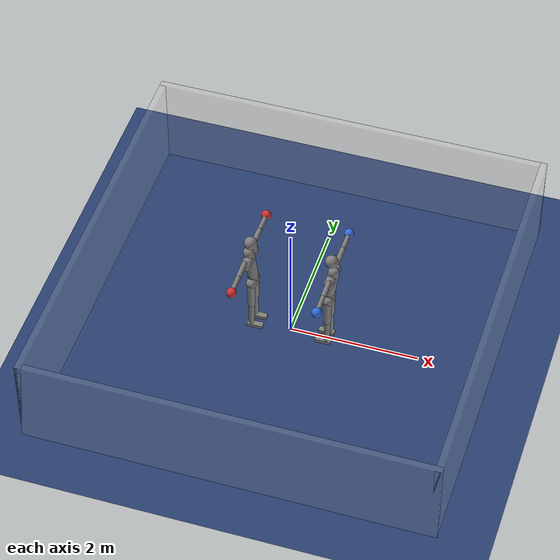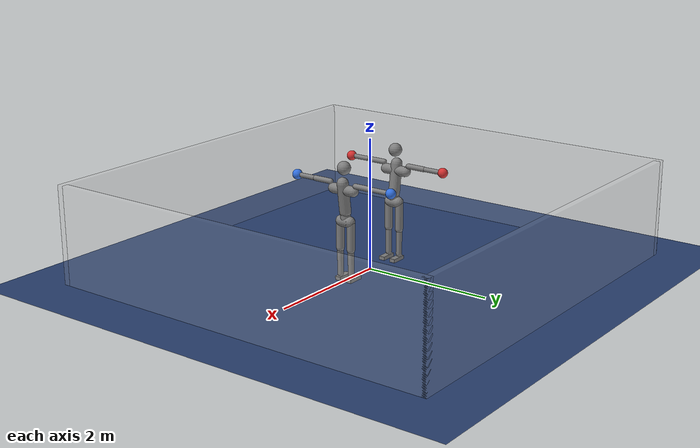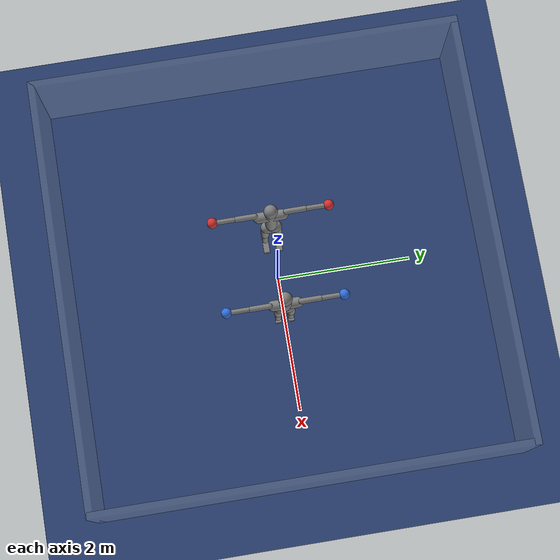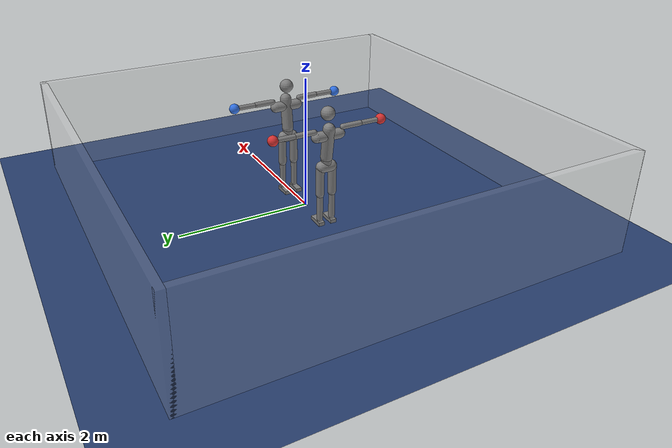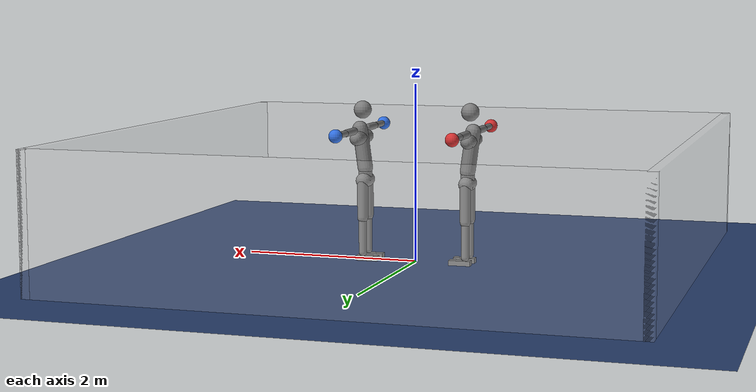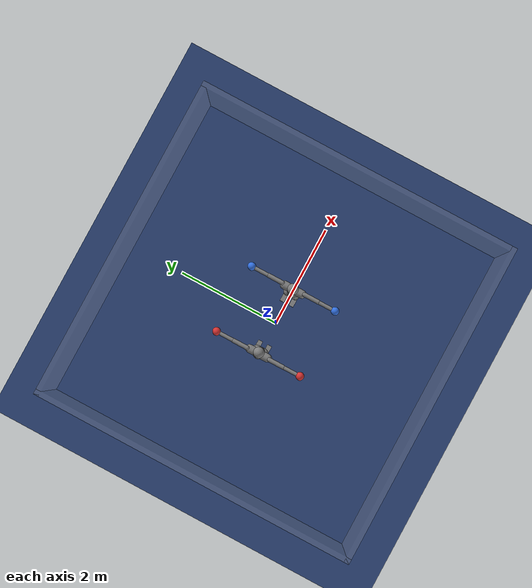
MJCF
<mujoco model="dev_spar">
  <compiler angle="degree" inertiafromgeom="true" autolimits="true"/>
  <option timestep="0.005" iterations="10" ls_iterations="10" integrator="implicitfast">
    <flag eulerdamp="disable"/>
  </option>
  <default>
    <geom contype="1" conaffinity="1" condim="3" friction="1.0 0.005 0.0001" density="1000" margin="0"/>
    <joint limited="true"/>
    <position ctrllimited="true"/>
  </default>
  <asset>
    <texture name="grid" type="2d" builtin="checker" rgb1=".18 .28 .48" rgb2=".14 .22 .40" width="300" height="300"/>
    <material name="grid" texture="grid" texrepeat="6 6" reflectance="0"/>
  </asset>
  <worldbody>
    <light pos="0 0 5" dir="0 0 -1" directional="true"/>
    <geom name="floor" type="plane" size="0 0 0.05" material="grid" friction="1.0 0.005 0.0001"/>
    <geom name="rope_n" type="box" pos="0.0000 3.1000 0.7500" size="3.1500 0.0500 0.7500" rgba="0.8 0.8 0.8 0.15"/>
    <geom name="rope_s" type="box" pos="0.0000 -3.1000 0.7500" size="3.1500 0.0500 0.7500" rgba="0.8 0.8 0.8 0.15"/>
    <geom name="rope_e" type="box" pos="3.1000 0.0000 0.7500" size="0.0500 3.1500 0.7500" rgba="0.8 0.8 0.8 0.15"/>
    <geom name="rope_w" type="box" pos="-3.1000 0.0000 0.7500" size="0.0500 3.1500 0.7500" rgba="0.8 0.8 0.8 0.15"/>
    <body name="a_pelvis" pos="-0.6000 0.0000 0.9049" quat="1.00000 0 0 0.00000">
      <freejoint name="a_root"/>
      <geom name="a_pelvis_geom" type="capsule" fromto="0.0000 -0.0700 0.0000 0.0000 0.0700 0.0000" size="0.0850" mass="6.4846" />
      <geom name="a_pelvis_up" type="capsule" fromto="0.0000 0.0000 0.0000 -0.0002 -0.0000 0.0989" size="0.0765" mass="4.1654" />
      <body name="a_torso" pos="-0.0002 -0.0000 0.1189">
        <joint name="a_abdomen_z" type="hinge" axis="0 0 1" range="-45 45" damping="0.5" armature="0.08" stiffness="0"/>
        <joint name="a_abdomen_y" type="hinge" axis="0 1 0" range="-60 30" damping="0.5" armature="0.08" stiffness="0"/>
        <joint name="a_abdomen_x" type="hinge" axis="1 0 0" range="-35 35" damping="0.5" armature="0.08" stiffness="0"/>
        <geom name="a_torso_geom" type="capsule" fromto="0.0000 0.0000 0.0200 -0.0604 0.0000 0.4641" size="0.0850" mass="26.6250" />
        <geom name="a_chest_geom" type="capsule" fromto="-0.0418 -0.1777 0.3632 -0.0418 0.1777 0.3632" size="0.0765" mass="0.5"/>
        <geom name="a_head_geom" type="sphere" pos="-0.0270 0.0000 0.6791" size="0.1000" mass="6.0750" />
        <body name="a_upper_arm_l" pos="-0.0522 0.2221 0.4540">
          <joint name="a_shoulder_x_l" type="hinge" axis="1 0 0" range="-170 30" damping="0.5" armature="0.03" stiffness="0"/>
          <joint name="a_shoulder_z_l" type="hinge" axis="0 0 1" range="-110 110" damping="0.5" armature="0.03" stiffness="0"/>
          <geom name="a_upper_arm_l_geom" type="capsule" fromto="0.0000 0.0000 0.0000 0.0000 0.2724 0.0000" size="0.0400" mass="2.1000" />
          <body name="a_forearm_l" pos="0.0000 0.2724 0.0000">
            <joint name="a_elbow_l" type="hinge" axis="0 0 1" range="-150 0" damping="0.5" armature="0.02" stiffness="0"/>
            <geom name="a_forearm_l_geom" type="capsule" fromto="0.0000 0.0000 0.0000 0.0000 0.2718 0.0000" size="0.0350" mass="1.2000" />
            <geom name="a_glove_l" type="sphere" pos="0.0000 0.3393 0.0000" size="0.0750" mass="0.7330" rgba="0.85 0.2 0.2 1"/>
          </body>
        </body>
        <body name="a_upper_arm_r" pos="-0.0522 -0.2221 0.4540">
          <joint name="a_shoulder_x_r" type="hinge" axis="1 0 0" range="-30 170" damping="0.5" armature="0.03" stiffness="0"/>
          <joint name="a_shoulder_z_r" type="hinge" axis="0 0 1" range="-110 110" damping="0.5" armature="0.03" stiffness="0"/>
          <geom name="a_upper_arm_r_geom" type="capsule" fromto="0.0000 0.0000 0.0000 0.0000 -0.2724 0.0000" size="0.0400" mass="2.1000" />
          <body name="a_forearm_r" pos="0.0000 -0.2724 0.0000">
            <joint name="a_elbow_r" type="hinge" axis="0 0 1" range="0 150" damping="0.5" armature="0.02" stiffness="0"/>
            <geom name="a_forearm_r_geom" type="capsule" fromto="0.0000 0.0000 0.0000 0.0000 -0.2718 0.0000" size="0.0350" mass="1.2000" />
            <geom name="a_glove_r" type="sphere" pos="0.0000 -0.3393 0.0000" size="0.0750" mass="0.7330" rgba="0.85 0.2 0.2 1"/>
          </body>
        </body>
      </body>
      <body name="a_thigh_l" pos="0.0002 0.0960 -0.0100">
        <joint name="a_hip_x_l" type="hinge" axis="1 0 0" range="-40 40" damping="0.5" armature="0.1" stiffness="0"/>
        <joint name="a_hip_z_l" type="hinge" axis="0 0 1" range="-35 35" damping="0.5" armature="0.1" stiffness="0"/>
        <joint name="a_hip_y_l" type="hinge" axis="0 1 0" range="-120 30" damping="0.5" armature="0.1" stiffness="0"/>
        <geom name="a_thigh_l_geom" type="capsule" fromto="0.0000 0.0000 0.0000 0.0000 0.0000 -0.4084" size="0.0600" mass="7.5000" />
        <body name="a_shin_l" pos="0.0000 0.0000 -0.4084">
          <joint name="a_knee_l" type="hinge" axis="0 1 0" range="0 150" damping="0.5" armature="0.1" stiffness="0"/>
          <geom name="a_shin_l_geom" type="capsule" fromto="0.0000 0.0000 0.0000 0.0000 0.0000 -0.3972" size="0.0450" mass="3.4875" />
          <body name="a_foot_l" pos="0.0000 0.0000 -0.3972">
            <joint name="a_ankle_y_l" type="hinge" axis="0 1 0" range="-20 50" damping="0.5" armature="0.03" stiffness="0"/>
            <joint name="a_ankle_x_l" type="hinge" axis="1 0 0" range="-25 25" damping="0.5" armature="0.03" stiffness="0"/>
            <geom name="a_foot_l_geom" type="box" pos="0.0565 0.0000 -0.0623" size="0.1228 0.0450 0.0280" mass="1.0875" friction="1.0 0.005 0.0001"/>
            <site name="a_foot_l_site" pos="0.0565 0.0000 -0.0623" size="0.01"/>
          </body>
        </body>
      </body>
      <body name="a_thigh_r" pos="0.0002 -0.0961 -0.0100">
        <joint name="a_hip_x_r" type="hinge" axis="1 0 0" range="-40 40" damping="0.5" armature="0.1" stiffness="0"/>
        <joint name="a_hip_z_r" type="hinge" axis="0 0 1" range="-35 35" damping="0.5" armature="0.1" stiffness="0"/>
        <joint name="a_hip_y_r" type="hinge" axis="0 1 0" range="-120 30" damping="0.5" armature="0.1" stiffness="0"/>
        <geom name="a_thigh_r_geom" type="capsule" fromto="0.0000 0.0000 0.0000 0.0000 0.0000 -0.4084" size="0.0600" mass="7.5000" />
        <body name="a_shin_r" pos="0.0000 0.0000 -0.4084">
          <joint name="a_knee_r" type="hinge" axis="0 1 0" range="0 150" damping="0.5" armature="0.1" stiffness="0"/>
          <geom name="a_shin_r_geom" type="capsule" fromto="0.0000 0.0000 0.0000 0.0000 0.0000 -0.3972" size="0.0450" mass="3.4875" />
          <body name="a_foot_r" pos="0.0000 0.0000 -0.3972">
            <joint name="a_ankle_y_r" type="hinge" axis="0 1 0" range="-20 50" damping="0.5" armature="0.03" stiffness="0"/>
            <joint name="a_ankle_x_r" type="hinge" axis="1 0 0" range="-25 25" damping="0.5" armature="0.03" stiffness="0"/>
            <geom name="a_foot_r_geom" type="box" pos="0.0565 0.0000 -0.0623" size="0.1228 0.0450 0.0280" mass="1.0875" friction="1.0 0.005 0.0001"/>
            <site name="a_foot_r_site" pos="0.0565 0.0000 -0.0623" size="0.01"/>
          </body>
        </body>
      </body>
    </body>
    <body name="b_pelvis" pos="0.6000 0.0000 0.9049" quat="0.00000 0 0 1.00000">
      <freejoint name="b_root"/>
      <geom name="b_pelvis_geom" type="capsule" fromto="0.0000 -0.0700 0.0000 0.0000 0.0700 0.0000" size="0.0850" mass="6.4846" />
      <geom name="b_pelvis_up" type="capsule" fromto="0.0000 0.0000 0.0000 -0.0002 -0.0000 0.0989" size="0.0765" mass="4.1654" />
      <body name="b_torso" pos="-0.0002 -0.0000 0.1189">
        <joint name="b_abdomen_z" type="hinge" axis="0 0 1" range="-45 45" damping="0.5" armature="0.08" stiffness="0"/>
        <joint name="b_abdomen_y" type="hinge" axis="0 1 0" range="-60 30" damping="0.5" armature="0.08" stiffness="0"/>
        <joint name="b_abdomen_x" type="hinge" axis="1 0 0" range="-35 35" damping="0.5" armature="0.08" stiffness="0"/>
        <geom name="b_torso_geom" type="capsule" fromto="0.0000 0.0000 0.0200 -0.0604 0.0000 0.4641" size="0.0850" mass="26.6250" />
        <geom name="b_chest_geom" type="capsule" fromto="-0.0418 -0.1777 0.3632 -0.0418 0.1777 0.3632" size="0.0765" mass="0.5"/>
        <geom name="b_head_geom" type="sphere" pos="-0.0270 0.0000 0.6791" size="0.1000" mass="6.0750" />
        <body name="b_upper_arm_l" pos="-0.0522 0.2221 0.4540">
          <joint name="b_shoulder_x_l" type="hinge" axis="1 0 0" range="-170 30" damping="0.5" armature="0.03" stiffness="0"/>
          <joint name="b_shoulder_z_l" type="hinge" axis="0 0 1" range="-110 110" damping="0.5" armature="0.03" stiffness="0"/>
          <geom name="b_upper_arm_l_geom" type="capsule" fromto="0.0000 0.0000 0.0000 0.0000 0.2724 0.0000" size="0.0400" mass="2.1000" />
          <body name="b_forearm_l" pos="0.0000 0.2724 0.0000">
            <joint name="b_elbow_l" type="hinge" axis="0 0 1" range="-150 0" damping="0.5" armature="0.02" stiffness="0"/>
            <geom name="b_forearm_l_geom" type="capsule" fromto="0.0000 0.0000 0.0000 0.0000 0.2718 0.0000" size="0.0350" mass="1.2000" />
            <geom name="b_glove_l" type="sphere" pos="0.0000 0.3393 0.0000" size="0.0750" mass="0.7330" rgba="0.2 0.45 0.9 1"/>
          </body>
        </body>
        <body name="b_upper_arm_r" pos="-0.0522 -0.2221 0.4540">
          <joint name="b_shoulder_x_r" type="hinge" axis="1 0 0" range="-30 170" damping="0.5" armature="0.03" stiffness="0"/>
          <joint name="b_shoulder_z_r" type="hinge" axis="0 0 1" range="-110 110" damping="0.5" armature="0.03" stiffness="0"/>
          <geom name="b_upper_arm_r_geom" type="capsule" fromto="0.0000 0.0000 0.0000 0.0000 -0.2724 0.0000" size="0.0400" mass="2.1000" />
          <body name="b_forearm_r" pos="0.0000 -0.2724 0.0000">
            <joint name="b_elbow_r" type="hinge" axis="0 0 1" range="0 150" damping="0.5" armature="0.02" stiffness="0"/>
            <geom name="b_forearm_r_geom" type="capsule" fromto="0.0000 0.0000 0.0000 0.0000 -0.2718 0.0000" size="0.0350" mass="1.2000" />
            <geom name="b_glove_r" type="sphere" pos="0.0000 -0.3393 0.0000" size="0.0750" mass="0.7330" rgba="0.2 0.45 0.9 1"/>
          </body>
        </body>
      </body>
      <body name="b_thigh_l" pos="0.0002 0.0960 -0.0100">
        <joint name="b_hip_x_l" type="hinge" axis="1 0 0" range="-40 40" damping="0.5" armature="0.1" stiffness="0"/>
        <joint name="b_hip_z_l" type="hinge" axis="0 0 1" range="-35 35" damping="0.5" armature="0.1" stiffness="0"/>
        <joint name="b_hip_y_l" type="hinge" axis="0 1 0" range="-120 30" damping="0.5" armature="0.1" stiffness="0"/>
        <geom name="b_thigh_l_geom" type="capsule" fromto="0.0000 0.0000 0.0000 0.0000 0.0000 -0.4084" size="0.0600" mass="7.5000" />
        <body name="b_shin_l" pos="0.0000 0.0000 -0.4084">
          <joint name="b_knee_l" type="hinge" axis="0 1 0" range="0 150" damping="0.5" armature="0.1" stiffness="0"/>
          <geom name="b_shin_l_geom" type="capsule" fromto="0.0000 0.0000 0.0000 0.0000 0.0000 -0.3972" size="0.0450" mass="3.4875" />
          <body name="b_foot_l" pos="0.0000 0.0000 -0.3972">
            <joint name="b_ankle_y_l" type="hinge" axis="0 1 0" range="-20 50" damping="0.5" armature="0.03" stiffness="0"/>
            <joint name="b_ankle_x_l" type="hinge" axis="1 0 0" range="-25 25" damping="0.5" armature="0.03" stiffness="0"/>
            <geom name="b_foot_l_geom" type="box" pos="0.0565 0.0000 -0.0623" size="0.1228 0.0450 0.0280" mass="1.0875" friction="1.0 0.005 0.0001"/>
            <site name="b_foot_l_site" pos="0.0565 0.0000 -0.0623" size="0.01"/>
          </body>
        </body>
      </body>
      <body name="b_thigh_r" pos="0.0002 -0.0961 -0.0100">
        <joint name="b_hip_x_r" type="hinge" axis="1 0 0" range="-40 40" damping="0.5" armature="0.1" stiffness="0"/>
        <joint name="b_hip_z_r" type="hinge" axis="0 0 1" range="-35 35" damping="0.5" armature="0.1" stiffness="0"/>
        <joint name="b_hip_y_r" type="hinge" axis="0 1 0" range="-120 30" damping="0.5" armature="0.1" stiffness="0"/>
        <geom name="b_thigh_r_geom" type="capsule" fromto="0.0000 0.0000 0.0000 0.0000 0.0000 -0.4084" size="0.0600" mass="7.5000" />
        <body name="b_shin_r" pos="0.0000 0.0000 -0.4084">
          <joint name="b_knee_r" type="hinge" axis="0 1 0" range="0 150" damping="0.5" armature="0.1" stiffness="0"/>
          <geom name="b_shin_r_geom" type="capsule" fromto="0.0000 0.0000 0.0000 0.0000 0.0000 -0.3972" size="0.0450" mass="3.4875" />
          <body name="b_foot_r" pos="0.0000 0.0000 -0.3972">
            <joint name="b_ankle_y_r" type="hinge" axis="0 1 0" range="-20 50" damping="0.5" armature="0.03" stiffness="0"/>
            <joint name="b_ankle_x_r" type="hinge" axis="1 0 0" range="-25 25" damping="0.5" armature="0.03" stiffness="0"/>
            <geom name="b_foot_r_geom" type="box" pos="0.0565 0.0000 -0.0623" size="0.1228 0.0450 0.0280" mass="1.0875" friction="1.0 0.005 0.0001"/>
            <site name="b_foot_r_site" pos="0.0565 0.0000 -0.0623" size="0.01"/>
          </body>
        </body>
      </body>
    </body>
  </worldbody>
  <contact>
    <exclude body1="a_pelvis" body2="a_torso"/>
    <exclude body1="a_pelvis" body2="a_thigh_l"/>
    <exclude body1="a_thigh_l" body2="a_shin_l"/>
    <exclude body1="a_shin_l" body2="a_foot_l"/>
    <exclude body1="a_torso" body2="a_upper_arm_l"/>
    <exclude body1="a_upper_arm_l" body2="a_forearm_l"/>
    <exclude body1="a_pelvis" body2="a_thigh_r"/>
    <exclude body1="a_thigh_r" body2="a_shin_r"/>
    <exclude body1="a_shin_r" body2="a_foot_r"/>
    <exclude body1="a_torso" body2="a_upper_arm_r"/>
    <exclude body1="a_upper_arm_r" body2="a_forearm_r"/>
    <exclude body1="b_pelvis" body2="b_torso"/>
    <exclude body1="b_pelvis" body2="b_thigh_l"/>
    <exclude body1="b_thigh_l" body2="b_shin_l"/>
    <exclude body1="b_shin_l" body2="b_foot_l"/>
    <exclude body1="b_torso" body2="b_upper_arm_l"/>
    <exclude body1="b_upper_arm_l" body2="b_forearm_l"/>
    <exclude body1="b_pelvis" body2="b_thigh_r"/>
    <exclude body1="b_thigh_r" body2="b_shin_r"/>
    <exclude body1="b_shin_r" body2="b_foot_r"/>
    <exclude body1="b_torso" body2="b_upper_arm_r"/>
    <exclude body1="b_upper_arm_r" body2="b_forearm_r"/>
  </contact>
  <actuator>
    <position name="a_abdomen_z" joint="a_abdomen_z" kp="450.0" kv="21.0" forcerange="-170.0 170.0" ctrlrange="-0.7854 0.7854"/>
    <position name="a_abdomen_y" joint="a_abdomen_y" kp="450.0" kv="21.0" forcerange="-170.0 170.0" ctrlrange="-1.0472 0.5236"/>
    <position name="a_abdomen_x" joint="a_abdomen_x" kp="450.0" kv="21.0" forcerange="-170.0 170.0" ctrlrange="-0.6109 0.6109"/>
    <position name="a_shoulder_x_l" joint="a_shoulder_x_l" kp="160.0" kv="8.0" forcerange="-100.0 100.0" ctrlrange="-2.9671 0.5236"/>
    <position name="a_shoulder_z_l" joint="a_shoulder_z_l" kp="160.0" kv="8.0" forcerange="-100.0 100.0" ctrlrange="-1.9199 1.9199"/>
    <position name="a_elbow_l" joint="a_elbow_l" kp="110.0" kv="5.5" forcerange="-70.0 70.0" ctrlrange="-2.6180 0.0000"/>
    <position name="a_shoulder_x_r" joint="a_shoulder_x_r" kp="160.0" kv="8.0" forcerange="-100.0 100.0" ctrlrange="-0.5236 2.9671"/>
    <position name="a_shoulder_z_r" joint="a_shoulder_z_r" kp="160.0" kv="8.0" forcerange="-100.0 100.0" ctrlrange="-1.9199 1.9199"/>
    <position name="a_elbow_r" joint="a_elbow_r" kp="110.0" kv="5.5" forcerange="-70.0 70.0" ctrlrange="0.0000 2.6180"/>
    <position name="a_hip_x_l" joint="a_hip_x_l" kp="600.0" kv="30.0" forcerange="-240.0 240.0" ctrlrange="-0.6981 0.6981"/>
    <position name="a_hip_z_l" joint="a_hip_z_l" kp="600.0" kv="30.0" forcerange="-240.0 240.0" ctrlrange="-0.6109 0.6109"/>
    <position name="a_hip_y_l" joint="a_hip_y_l" kp="600.0" kv="30.0" forcerange="-240.0 240.0" ctrlrange="-2.0944 0.5236"/>
    <position name="a_knee_l" joint="a_knee_l" kp="600.0" kv="30.0" forcerange="-260.0 260.0" ctrlrange="0.0000 2.6180"/>
    <position name="a_ankle_y_l" joint="a_ankle_y_l" kp="750.0" kv="30.0" forcerange="-220.0 220.0" ctrlrange="-0.3491 0.8727"/>
    <position name="a_ankle_x_l" joint="a_ankle_x_l" kp="80.0" kv="4.0" forcerange="-60.0 60.0" ctrlrange="-0.4363 0.4363"/>
    <position name="a_hip_x_r" joint="a_hip_x_r" kp="600.0" kv="30.0" forcerange="-240.0 240.0" ctrlrange="-0.6981 0.6981"/>
    <position name="a_hip_z_r" joint="a_hip_z_r" kp="600.0" kv="30.0" forcerange="-240.0 240.0" ctrlrange="-0.6109 0.6109"/>
    <position name="a_hip_y_r" joint="a_hip_y_r" kp="600.0" kv="30.0" forcerange="-240.0 240.0" ctrlrange="-2.0944 0.5236"/>
    <position name="a_knee_r" joint="a_knee_r" kp="600.0" kv="30.0" forcerange="-260.0 260.0" ctrlrange="0.0000 2.6180"/>
    <position name="a_ankle_y_r" joint="a_ankle_y_r" kp="750.0" kv="30.0" forcerange="-220.0 220.0" ctrlrange="-0.3491 0.8727"/>
    <position name="a_ankle_x_r" joint="a_ankle_x_r" kp="80.0" kv="4.0" forcerange="-60.0 60.0" ctrlrange="-0.4363 0.4363"/>
    <position name="b_abdomen_z" joint="b_abdomen_z" kp="450.0" kv="21.0" forcerange="-170.0 170.0" ctrlrange="-0.7854 0.7854"/>
    <position name="b_abdomen_y" joint="b_abdomen_y" kp="450.0" kv="21.0" forcerange="-170.0 170.0" ctrlrange="-1.0472 0.5236"/>
    <position name="b_abdomen_x" joint="b_abdomen_x" kp="450.0" kv="21.0" forcerange="-170.0 170.0" ctrlrange="-0.6109 0.6109"/>
    <position name="b_shoulder_x_l" joint="b_shoulder_x_l" kp="160.0" kv="8.0" forcerange="-100.0 100.0" ctrlrange="-2.9671 0.5236"/>
    <position name="b_shoulder_z_l" joint="b_shoulder_z_l" kp="160.0" kv="8.0" forcerange="-100.0 100.0" ctrlrange="-1.9199 1.9199"/>
    <position name="b_elbow_l" joint="b_elbow_l" kp="110.0" kv="5.5" forcerange="-70.0 70.0" ctrlrange="-2.6180 0.0000"/>
    <position name="b_shoulder_x_r" joint="b_shoulder_x_r" kp="160.0" kv="8.0" forcerange="-100.0 100.0" ctrlrange="-0.5236 2.9671"/>
    <position name="b_shoulder_z_r" joint="b_shoulder_z_r" kp="160.0" kv="8.0" forcerange="-100.0 100.0" ctrlrange="-1.9199 1.9199"/>
    <position name="b_elbow_r" joint="b_elbow_r" kp="110.0" kv="5.5" forcerange="-70.0 70.0" ctrlrange="0.0000 2.6180"/>
    <position name="b_hip_x_l" joint="b_hip_x_l" kp="600.0" kv="30.0" forcerange="-240.0 240.0" ctrlrange="-0.6981 0.6981"/>
    <position name="b_hip_z_l" joint="b_hip_z_l" kp="600.0" kv="30.0" forcerange="-240.0 240.0" ctrlrange="-0.6109 0.6109"/>
    <position name="b_hip_y_l" joint="b_hip_y_l" kp="600.0" kv="30.0" forcerange="-240.0 240.0" ctrlrange="-2.0944 0.5236"/>
    <position name="b_knee_l" joint="b_knee_l" kp="600.0" kv="30.0" forcerange="-260.0 260.0" ctrlrange="0.0000 2.6180"/>
    <position name="b_ankle_y_l" joint="b_ankle_y_l" kp="750.0" kv="30.0" forcerange="-220.0 220.0" ctrlrange="-0.3491 0.8727"/>
    <position name="b_ankle_x_l" joint="b_ankle_x_l" kp="80.0" kv="4.0" forcerange="-60.0 60.0" ctrlrange="-0.4363 0.4363"/>
    <position name="b_hip_x_r" joint="b_hip_x_r" kp="600.0" kv="30.0" forcerange="-240.0 240.0" ctrlrange="-0.6981 0.6981"/>
    <position name="b_hip_z_r" joint="b_hip_z_r" kp="600.0" kv="30.0" forcerange="-240.0 240.0" ctrlrange="-0.6109 0.6109"/>
    <position name="b_hip_y_r" joint="b_hip_y_r" kp="600.0" kv="30.0" forcerange="-240.0 240.0" ctrlrange="-2.0944 0.5236"/>
    <position name="b_knee_r" joint="b_knee_r" kp="600.0" kv="30.0" forcerange="-260.0 260.0" ctrlrange="0.0000 2.6180"/>
    <position name="b_ankle_y_r" joint="b_ankle_y_r" kp="750.0" kv="30.0" forcerange="-220.0 220.0" ctrlrange="-0.3491 0.8727"/>
    <position name="b_ankle_x_r" joint="b_ankle_x_r" kp="80.0" kv="4.0" forcerange="-60.0 60.0" ctrlrange="-0.4363 0.4363"/>
  </actuator>
  <keyframe>
    <key name="stand" qpos="-0.6000 0.0000 0.8863 1.00000 0 0 0.00000 0.0000 0.0000 0.0000 -1.3265 -0.7330 -1.9548 1.3265 0.7330 1.9548 0.0000 0.0000 -0.1745 0.4538 -0.2793 0.0000 0.0000 0.0000 -0.1745 0.4538 -0.2793 0.0000 0.6000 0.0000 0.8863 0.00000 0 0 1.00000 0.0000 0.0000 0.0000 -1.3265 -0.7330 -1.9548 1.3265 0.7330 1.9548 0.0000 0.0000 -0.1745 0.4538 -0.2793 0.0000 0.0000 0.0000 -0.1745 0.4538 -0.2793 0.0000"/>
  </keyframe>
</mujoco>
